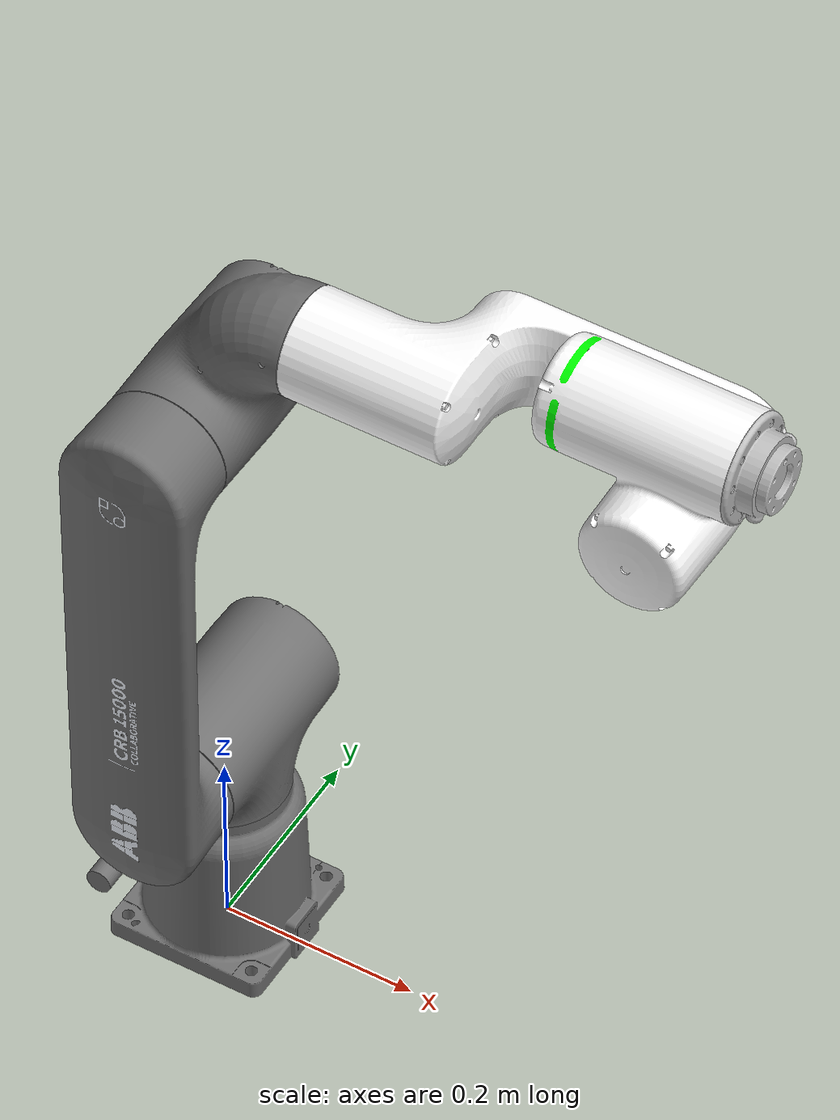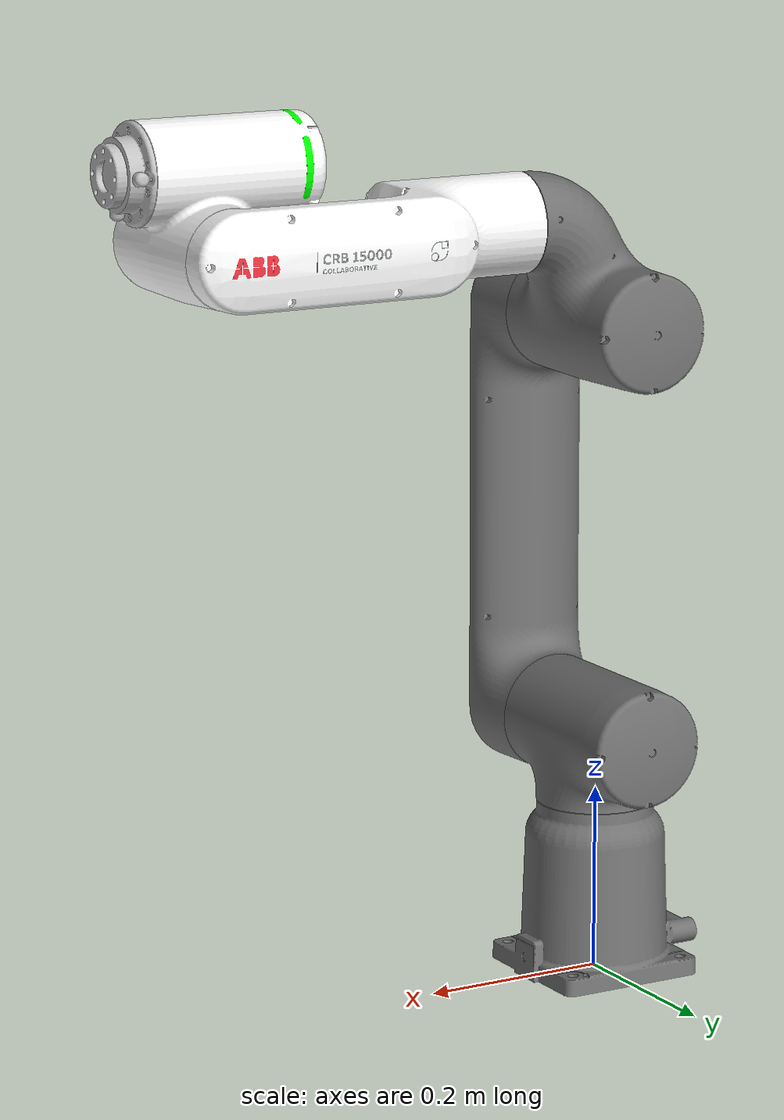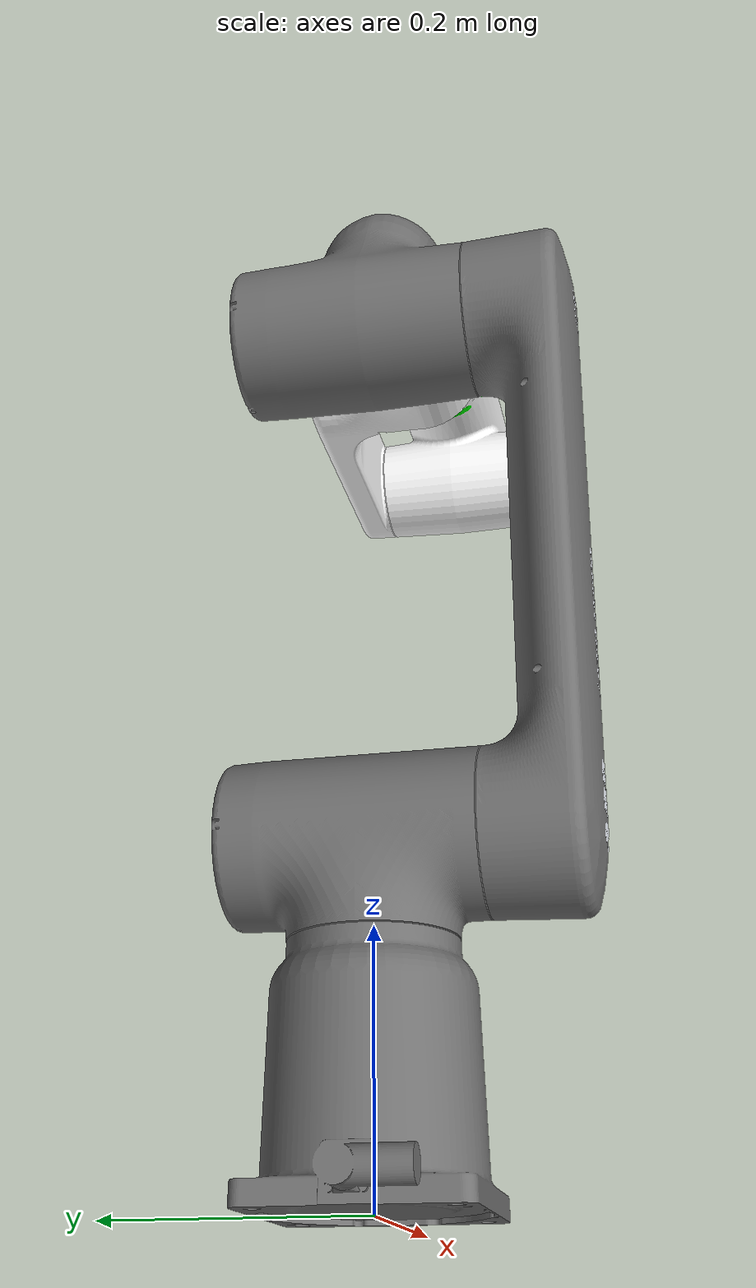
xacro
<?xml version="1.0" ?>
<robot name="abb_crb15000_5_95" xmlns:xacro="http://ros.org/wiki/xacro">
  <!-- Arguments -->
  <xacro:arg name="use_fake_hardware" default="true"/>
  <xacro:property name="use_fake_hardware" value="$(arg use_fake_hardware)"/>
  <xacro:arg name="rws_ip" default="None"/>
  <xacro:property name="rws_ip" value="$(arg rws_ip)"/>
  <xacro:arg name="rws_port" default="80"/>
  <xacro:property name="rws_port" value="$(arg rws_port)"/>
  <xacro:arg name="configure_via_rws" default="false"/>
  <xacro:property name="configure_via_rws" value="$(arg configure_via_rws)"/>

  <!-- Robot description -->
  <xacro:include filename="$(find abb_crb15000_support)/urdf/crb15000_5_95_macro.xacro"/>
  <xacro:abb_crb15000_5_95 prefix=""/>

  <!-- ros2_control -->
  <xacro:include filename="$(find abb_crb15000_support)/urdf/crb15000.ros2_control.xacro" />
  <xacro:abb_ros2_control
    name="ABBMultiInterfaceHardware"
    prefix=""
    use_fake_hardware="${use_fake_hardware}"
    rws_ip="${rws_ip}"
    rws_port="${rws_port}"
    configure_via_rws="${configure_via_rws}"/>
</robot>

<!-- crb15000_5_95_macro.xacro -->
<robot xmlns:xacro="http://ros.org/wiki/xacro">
  <xacro:include filename="$(find abb_resources)/urdf/common_materials.xacro"/>

  <xacro:macro name="abb_crb15000_5_95" params="prefix">
    <!-- link list -->
    <link name="${prefix}base_link">
      <collision>
        <geometry>
          <mesh filename="package://abb_crb15000_support/meshes/crb15000_5_95/collision/base_link.stl"/>
        </geometry>
      </collision>
      <visual>
        <geometry>
          <mesh filename="package://abb_crb15000_support/meshes/crb15000_5_95/visual/base_link.dae"/>
        </geometry>
        <xacro:material_abb_yellow />
      </visual>
    </link>
    <link name="${prefix}link_1">
      <collision>
        <geometry>
          <mesh filename="package://abb_crb15000_support/meshes/crb15000_5_95/collision/link_1.stl"/>
        </geometry>
      </collision>
      <visual>
        <geometry>
          <mesh filename="package://abb_crb15000_support/meshes/crb15000_5_95/visual/link_1.dae"/>
        </geometry>
        <xacro:material_abb_yellow />
      </visual>
    </link>
    <link name="${prefix}link_2">
      <collision>
        <geometry>
          <mesh filename="package://abb_crb15000_support/meshes/crb15000_5_95/collision/link_2.stl"/>
        </geometry>
      </collision>
      <visual>
        <geometry>
          <mesh filename="package://abb_crb15000_support/meshes/crb15000_5_95/visual/link_2.dae"/>
        </geometry>
        <xacro:material_abb_yellow />
      </visual>
    </link>
    <link name="${prefix}link_3">
      <collision>
        <geometry>
          <mesh filename="package://abb_crb15000_support/meshes/crb15000_5_95/collision/link_3.stl"/>
        </geometry>
      </collision>
      <visual>
        <geometry>
          <mesh filename="package://abb_crb15000_support/meshes/crb15000_5_95/visual/link_3.dae"/>
        </geometry>
        <xacro:material_abb_yellow />
      </visual>
    </link>
    <link name="${prefix}link_4">
      <collision>
        <geometry>
          <mesh filename="package://abb_crb15000_support/meshes/crb15000_5_95/collision/link_4.stl"/>
        </geometry>
      </collision>
      <visual>
        <geometry>
          <mesh filename="package://abb_crb15000_support/meshes/crb15000_5_95/visual/link_4.dae"/>
        </geometry>
        <xacro:material_abb_yellow />
      </visual>
    </link>
    <link name="${prefix}link_5">
      <collision>
        <geometry>
          <mesh filename="package://abb_crb15000_support/meshes/crb15000_5_95/collision/link_5.stl"/>
        </geometry>
      </collision>
      <visual>
        <geometry>
          <mesh filename="package://abb_crb15000_support/meshes/crb15000_5_95/visual/link_5.dae"/>
        </geometry>
        <xacro:material_abb_yellow />
      </visual>
    </link>
    <link name="${prefix}link_6">
      <collision>
        <geometry>
          <mesh filename="package://abb_crb15000_support/meshes/crb15000_5_95/collision/link_6.stl"/>
        </geometry>
      </collision>
      <visual>
        <geometry>
          <mesh filename="package://abb_crb15000_support/meshes/crb15000_5_95/visual/link_6.dae"/>
        </geometry>
        <xacro:material_abb_yellow />
      </visual>
    </link>
    <!-- end of link list -->

    <!-- joint list -->
    <joint type="revolute" name="${prefix}joint_1">
      <origin xyz="0 0 0.265" rpy="0 0 0"/>
      <axis xyz="0 0 1"/>
      <parent link="${prefix}base_link"/>
      <child link="${prefix}link_1"/>
      <!-- See note in package.xml about effort limits -->
      <limit effort="1000" lower="${radians(-180)}" upper="${radians(180)}" velocity="${radians(125)}"/>
    </joint>
    <joint type="revolute" name="${prefix}joint_2">
      <origin xyz="0 0 0" rpy="0 0 0"/>
      <axis xyz="0 1 0"/>
      <parent link="${prefix}link_1"/>
      <child link="${prefix}link_2"/>
      <!-- See note in package.xml about effort limits -->
      <limit effort="1000" lower="${radians(-180)}" upper="${radians(180)}" velocity="${radians(125)}"/>
    </joint>
    <joint type="revolute" name="${prefix}joint_3">
      <origin xyz="0 0 0.444" rpy="0 0 0"/>
      <axis xyz="0 1 0"/>
      <parent link="${prefix}link_2"/>
      <child link="${prefix}link_3"/>
      <!-- See note in package.xml about effort limits -->
      <limit effort="1000" lower="${radians(-225)}" upper="${radians(85)}" velocity="${radians(140)}"/>
    </joint>
    <joint type="revolute" name="${prefix}joint_4">
      <origin xyz="0 0 0.110" rpy="0 0 0"/>
      <axis xyz="1 0 0"/>
      <parent link="${prefix}link_3"/>
      <child link="${prefix}link_4"/>
      <!-- See note in package.xml about effort limits -->
      <limit effort="1000" lower="${radians(-180)}" upper="${radians(180)}" velocity="${radians(200)}"/>
    </joint>
    <joint type="revolute" name="${prefix}joint_5">
      <origin xyz="0.470 0 0" rpy="0 0 0"/>
      <axis xyz="0 1 0"/>
      <parent link="${prefix}link_4"/>
      <child link="${prefix}link_5"/>
      <!-- See note in package.xml about effort limits -->
      <limit effort="1000" lower="${radians(-180)}" upper="${radians(180)}" velocity="${radians(200)}"/>
    </joint>
    <joint type="revolute" name="${prefix}joint_6">
      <origin xyz="0.101 0 0.080" rpy="0 0 0"/>
      <axis xyz="1 0 0"/>
      <parent link="${prefix}link_5"/>
      <child link="${prefix}link_6"/>
      <!-- See note in package.xml about effort limits -->
      <limit effort="1000" lower="${radians(-270)}" upper="${radians(270)}" velocity="${radians(200)}"/>
    </joint>
    <!-- end of joint list -->

    <!-- ROS-Industrial 'base' frame: base_link to ABB World Coordinates transform -->
    <link name="${prefix}base" />
    <joint name="${prefix}base_link-base" type="fixed">
      <origin xyz="0 0 0" rpy="0 0 0"/>
      <parent link="${prefix}base_link"/>
      <child link="${prefix}base"/>
    </joint>

    <!-- ROS-Industrial 'flange' frame: attachment point for EEF models -->
    <link name="${prefix}flange"/>
    <joint type="fixed" name="${prefix}joint_6-flange">
      <origin xyz="0 0 0" rpy="0 0 0"/>
      <parent link="${prefix}link_6"/>
      <child link="${prefix}flange"/>
    </joint>

    <!-- ROS-Industrial 'tool0' frame: all-zeros tool frame -->
    <link name="${prefix}tool0" />
    <joint name="${prefix}flange-tool0" type="fixed">
      <origin xyz="0 0 0" rpy="0 ${radians(90)} 0" />
      <parent link="${prefix}flange" />
      <child link="${prefix}tool0" />
    </joint>
  </xacro:macro>
</robot>
